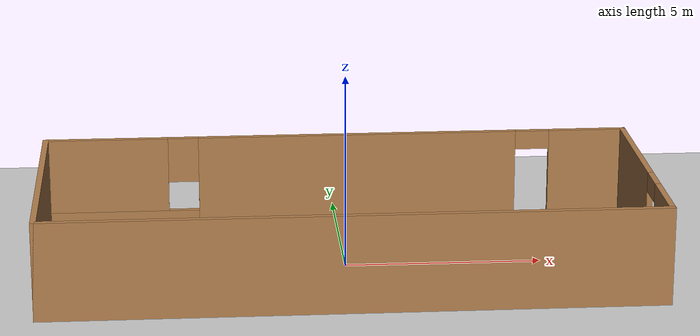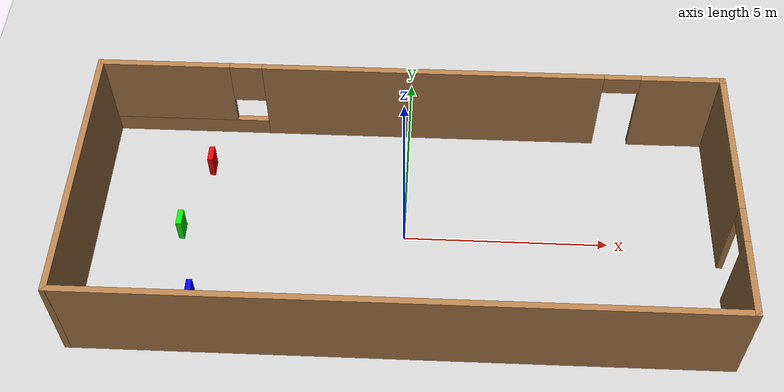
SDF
<sdf version="1.6">
 <world name="default">
  <light name="sun" type="directional">
   <pose>0 0 10 0 -0 0</pose>
   <diffuse>0.8 0.8 0.8 1</diffuse>
   <specular>0.2 0.2 0.2 1</specular>
   <attenuation>
    <range>1000</range>
    <constant>0.9</constant>
    <linear>0.01</linear>
    <quadratic>0.001</quadratic>
   </attenuation>
   <direction>-0.5 0.1 -0.9</direction>
  </light>
  <model name="ground_plane">
   <static>1</static>
   <link name="link">
    <collision name="collision">
     <geometry><plane><normal>0 0 1</normal><size>100 100</size></plane></geometry>
     <surface>
      <contact><collide_bitmask>65535</collide_bitmask></contact>
      <friction><ode><mu>100</mu><mu2>50</mu2></ode></friction>
     </surface>
    </collision>
    <visual name="visual">
     <cast_shadows>0</cast_shadows>
     <geometry><plane><normal>0 0 1</normal><size>100 100</size></plane></geometry>
     <material>
      <script><uri>file://media/materials/scripts/gazebo.material</uri><name>Gazebo/Grey</name></script>
     </material>
    </visual>
   </link>
  </model>
  <gravity>0 0 -9.8</gravity>
  <magnetic_field>6e-06 2.3e-05 -4.2e-05</magnetic_field>
  <atmosphere type="adiabatic"/>
  <physics name="default_physics" default="0" type="ode">
   <max_step_size>0.001</max_step_size>
   <real_time_factor>1</real_time_factor>
   <real_time_update_rate>1000</real_time_update_rate>
  </physics>
  <scene><ambient>0.4 0.4 0.4 1</ambient><background>0.7 0.7 0.7 1</background><shadows>1</shadows></scene>
  <audio><device>default</device></audio>
  <spherical_coordinates>
   <surface_model>EARTH_WGS84</surface_model>
   <latitude_deg>0</latitude_deg>
   <longitude_deg>0</longitude_deg>
   <elevation>0</elevation>
   <heading_deg>0</heading_deg>
  </spherical_coordinates>
  <model name="facility">
   <link name="Wall_5">
    <collision name="Wall_5_Collision">
     <geometry><box><size>15.5 0.15 2.5</size></box></geometry>
     <pose>0 0 1.25 0 -0 0</pose>
    </collision>
    <visual name="Wall_5_Visual">
     <pose>0 0 1.25 0 -0 0</pose>
     <geometry><box><size>15.5 0.15 2.5</size></box></geometry>
     <material>
      <script><uri>file://media/materials/scripts/gazebo.material</uri><name>Gazebo/Wood</name></script>
      <ambient>1 1 1 1</ambient>
     </material>
     <meta><layer>0</layer></meta>
    </visual>
    <pose>0 -3.3 0 0 -0 0</pose>
   </link>
   <link name="Wall_6">
    <pose>7.675 0 0 0 -0 1.5708</pose>
    <visual name="Wall_6_Visual_0">
     <pose>-2.41753 0 1.25 0 -0 0</pose>
     <geometry><box><size>1.91493 0.15 2.5</size></box></geometry>
     <material>
      <script><uri>file://media/materials/scripts/gazebo.material</uri><name>Gazebo/Wood</name></script>
      <ambient>1 1 1 1</ambient>
     </material>
     <meta><layer>0</layer></meta>
    </visual>
    <collision name="Wall_6_Collision_0">
     <geometry><box><size>1.91493 0.15 2.5</size></box></geometry>
     <pose>-2.41753 0 1.25 0 -0 0</pose>
    </collision>
    <visual name="Wall_6_Visual_1">
     <pose>1.40746 0 1.25 0 -0 0</pose>
     <geometry><box><size>3.93507 0.15 2.5</size></box></geometry>
     <material>
      <script><uri>file://media/materials/scripts/gazebo.material</uri><name>Gazebo/Wood</name></script>
      <ambient>1 1 1 1</ambient>
     </material>
     <meta><layer>0</layer></meta>
    </visual>
    <collision name="Wall_6_Collision_1">
     <geometry><box><size>3.93507 0.15 2.5</size></box></geometry>
     <pose>1.40746 0 1.25 0 -0 0</pose>
    </collision>
    <visual name="Wall_6_Visual_2">
     <pose>-1.01007 0 2.25 0 -0 0</pose>
     <geometry><box><size>0.9 0.15 0.5</size></box></geometry>
     <material>
      <script><uri>file://media/materials/scripts/gazebo.material</uri><name>Gazebo/Wood</name></script>
      <ambient>1 1 1 1</ambient>
     </material>
     <meta><layer>0</layer></meta>
    </visual>
    <collision name="Wall_6_Collision_2">
     <geometry><box><size>0.9 0.15 0.5</size></box></geometry>
     <pose>-1.01007 0 2.25 0 -0 0</pose>
    </collision>
   </link>
   <link name="Wall_7">
    <pose>0 3.3 0 0 -0 3.14159</pose>
    <visual name="Wall_7_Visual_0">
     <pose>-6.71594 0 1.25 0 -0 0</pose>
     <geometry><box><size>2.06812 0.15 2.5</size></box></geometry>
     <material>
      <script><uri>file://media/materials/scripts/gazebo.material</uri><name>Gazebo/Wood</name></script>
      <ambient>1 1 1 1</ambient>
     </material>
     <meta><layer>0</layer></meta>
    </visual>
    <collision name="Wall_7_Collision_0">
     <geometry><box><size>2.06812 0.15 2.5</size></box></geometry>
     <pose>-6.71594 0 1.25 0 -0 0</pose>
    </collision>
    <visual name="Wall_7_Visual_1">
     <pose>-0.557627 0 1.25 0 -0 0</pose>
     <geometry><box><size>8.4485 0.15 2.5</size></box></geometry>
     <material>
      <script><uri>file://media/materials/scripts/gazebo.material</uri><name>Gazebo/Wood</name></script>
      <ambient>1 1 1 1</ambient>
     </material>
     <meta><layer>0</layer></meta>
    </visual>
    <collision name="Wall_7_Collision_1">
     <geometry><box><size>8.4485 0.15 2.5</size></box></geometry>
     <pose>-0.557627 0 1.25 0 -0 0</pose>
    </collision>
    <visual name="Wall_7_Visual_2">
     <pose>5.70831 0 0.25 0 -0 0</pose>
     <geometry><box><size>4.08338 0.15 0.5</size></box></geometry>
     <material>
      <script><uri>file://media/materials/scripts/gazebo.material</uri><name>Gazebo/Wood</name></script>
      <ambient>1 1 1 1</ambient>
     </material>
     <meta><layer>0</layer></meta>
    </visual>
    <collision name="Wall_7_Collision_2">
     <geometry><box><size>4.08338 0.15 0.5</size></box></geometry>
     <pose>5.70831 0 0.25 0 -0 0</pose>
    </collision>
    <visual name="Wall_7_Visual_3">
     <pose>6.10831 0 1.5 0 -0 0</pose>
     <geometry><box><size>3.28337 0.15 2</size></box></geometry>
     <material>
      <script><uri>file://media/materials/scripts/gazebo.material</uri><name>Gazebo/Wood</name></script>
      <ambient>1 1 1 1</ambient>
     </material>
     <meta><layer>0</layer></meta>
    </visual>
    <collision name="Wall_7_Collision_3">
     <geometry><box><size>3.28337 0.15 2</size></box></geometry>
     <pose>6.10831 0 1.5 0 -0 0</pose>
    </collision>
    <visual name="Wall_7_Visual_4">
     <pose>4.06663 0 1.9 0 -0 0</pose>
     <geometry><box><size>0.8 0.15 1.2</size></box></geometry>
     <material>
      <script><uri>file://media/materials/scripts/gazebo.material</uri><name>Gazebo/Wood</name></script>
      <ambient>1 1 1 1</ambient>
     </material>
     <meta><layer>0</layer></meta>
    </visual>
    <collision name="Wall_7_Collision_4">
     <geometry><box><size>0.8 0.15 1.2</size></box></geometry>
     <pose>4.06663 0 1.9 0 -0 0</pose>
    </collision>
    <visual name="Wall_7_Visual_5">
     <pose>-5.23188 0 2.25 0 -0 0</pose>
     <geometry><box><size>0.9 0.15 0.5</size></box></geometry>
     <material>
      <script><uri>file://media/materials/scripts/gazebo.material</uri><name>Gazebo/Wood</name></script>
      <ambient>1 1 1 1</ambient>
     </material>
     <meta><layer>0</layer></meta>
    </visual>
    <collision name="Wall_7_Collision_5">
     <geometry><box><size>0.9 0.15 0.5</size></box></geometry>
     <pose>-5.23188 0 2.25 0 -0 0</pose>
    </collision>
   </link>
   <link name="Wall_8">
    <collision name="Wall_8_Collision">
     <geometry><box><size>6.75 0.15 2.5</size></box></geometry>
     <pose>0 0 1.25 0 -0 0</pose>
    </collision>
    <visual name="Wall_8_Visual">
     <pose>0 0 1.25 0 -0 0</pose>
     <geometry><box><size>6.75 0.15 2.5</size></box></geometry>
     <material>
      <script><uri>file://media/materials/scripts/gazebo.material</uri><name>Gazebo/Wood</name></script>
      <ambient>1 1 1 1</ambient>
     </material>
     <meta><layer>0</layer></meta>
    </visual>
    <pose>-7.675 0 0 0 -0 -1.5708</pose>
   </link>
   <static>1</static>
  </model>
  <model name="unit_box_blue">
   <link name="link">
    <inertial>
     <mass>1</mass>
     <inertia>
      <ixx>0.166667</ixx>
      <ixy>0</ixy>
      <ixz>0</ixz>
      <iyy>0.166667</iyy>
      <iyz>0</iyz>
      <izz>0.166667</izz>
     </inertia>
    </inertial>
    <visual name="visual">
     <geometry><box><size>0.139011 0.424914 0.63903</size></box></geometry>
     <material>
      <script><name>Gazebo/Grey</name><uri>file://media/materials/scripts/gazebo.material</uri></script>
      <shader type="vertex"><normal_map>__default__</normal_map></shader>
      <ambient>0 0 1 1</ambient>
      <diffuse>0 0 1 1</diffuse>
      <specular>0.01 0.01 0.01 1</specular>
      <emissive>0 0 0 1</emissive>
     </material>
    </visual>
    <collision name="collision">
     <geometry><box><size>0.139011 0.424914 0.63903</size></box></geometry>
     <surface>
      <friction>
       <ode><mu>1</mu><mu2>1</mu2><fdir1>0 0 0</fdir1><slip1>0</slip1><slip2>0</slip2></ode>
       <torsional>
        <coefficient>1</coefficient>
        <patch_radius>0</patch_radius>
        <surface_radius>0</surface_radius>
        <use_patch_radius>1</use_patch_radius>
        <ode><slip>0</slip></ode>
       </torsional>
      </friction>
      <bounce><restitution_coefficient>0</restitution_coefficient><threshold>1e+06</threshold></bounce>
      <contact>
       <collide_without_contact>0</collide_without_contact>
       <collide_without_contact_bitmask>1</collide_without_contact_bitmask>
       <collide_bitmask>1</collide_bitmask>
       <ode>
        <soft_cfm>0</soft_cfm>
        <soft_erp>0.2</soft_erp>
        <kp>1e+13</kp>
        <kd>1</kd>
        <max_vel>0.01</max_vel>
        <min_depth>0</min_depth>
       </ode>
       <bullet>
        <split_impulse>1</split_impulse>
        <split_impulse_penetration_threshold>-0.01</split_impulse_penetration_threshold>
        <soft_cfm>0</soft_cfm>
        <soft_erp>0.2</soft_erp>
        <kp>1e+13</kp>
        <kd>1</kd>
       </bullet>
      </contact>
     </surface>
    </collision>
   </link>
   <static>1</static>
   <pose>-5 -2 0.3 0 -0 0</pose>
  </model>
  <model name="unit_box_green">
   <link name="link">
    <inertial>
     <mass>1</mass>
     <inertia>
      <ixx>0.166667</ixx>
      <ixy>0</ixy>
      <ixz>0</ixz>
      <iyy>0.166667</iyy>
      <iyz>0</iyz>
      <izz>0.166667</izz>
     </inertia>
    </inertial>
    <visual name="visual">
     <geometry><box><size>0.139011 0.424914 0.63903</size></box></geometry>
     <material>
      <script><name>Gazebo/Grey</name><uri>file://media/materials/scripts/gazebo.material</uri></script>
      <shader type="vertex"><normal_map>__default__</normal_map></shader>
      <ambient>0 1 0 1</ambient>
      <diffuse>0 1 0 1</diffuse>
      <specular>0.01 0.01 0.01 1</specular>
      <emissive>0 0 0 1</emissive>
     </material>
    </visual>
    <collision name="collision">
     <geometry><box><size>0.139011 0.424914 0.63903</size></box></geometry>
     <surface>
      <friction>
       <ode><mu>1</mu><mu2>1</mu2><fdir1>0 0 0</fdir1><slip1>0</slip1><slip2>0</slip2></ode>
       <torsional>
        <coefficient>1</coefficient>
        <patch_radius>0</patch_radius>
        <surface_radius>0</surface_radius>
        <use_patch_radius>1</use_patch_radius>
        <ode><slip>0</slip></ode>
       </torsional>
      </friction>
      <bounce><restitution_coefficient>0</restitution_coefficient><threshold>1e+06</threshold></bounce>
      <contact>
       <collide_without_contact>0</collide_without_contact>
       <collide_without_contact_bitmask>1</collide_without_contact_bitmask>
       <collide_bitmask>1</collide_bitmask>
       <ode>
        <soft_cfm>0</soft_cfm>
        <soft_erp>0.2</soft_erp>
        <kp>1e+13</kp>
        <kd>1</kd>
        <max_vel>0.01</max_vel>
        <min_depth>0</min_depth>
       </ode>
       <bullet>
        <split_impulse>1</split_impulse>
        <split_impulse_penetration_threshold>-0.01</split_impulse_penetration_threshold>
        <soft_cfm>0</soft_cfm>
        <soft_erp>0.2</soft_erp>
        <kp>1e+13</kp>
        <kd>1</kd>
       </bullet>
      </contact>
     </surface>
    </collision>
   </link>
   <static>1</static>
   <pose>-5.5 0 0.3 0 -0 0</pose>
  </model>
  <model name="unit_box_red">
   <link name="link">
    <inertial>
     <mass>1</mass>
     <inertia>
      <ixx>0.166667</ixx>
      <ixy>0</ixy>
      <ixz>0</ixz>
      <iyy>0.166667</iyy>
      <iyz>0</iyz>
      <izz>0.166667</izz>
     </inertia>
    </inertial>
    <visual name="visual">
     <geometry><box><size>0.139011 0.424914 0.63903</size></box></geometry>
     <material>
      <script><name>Gazebo/Grey</name><uri>file://media/materials/scripts/gazebo.material</uri></script>
      <shader type="vertex"><normal_map>__default__</normal_map></shader>
      <ambient>1 0 0 1</ambient>
      <diffuse>1 0 0 1</diffuse>
      <specular>0.01 0.01 0.01 1</specular>
      <emissive>0 0 0 1</emissive>
     </material>
    </visual>
    <collision name="collision">
     <geometry><box><size>0.139011 0.424914 0.63903</size></box></geometry>
     <surface>
      <friction>
       <ode><mu>1</mu><mu2>1</mu2><fdir1>0 0 0</fdir1><slip1>0</slip1><slip2>0</slip2></ode>
       <torsional>
        <coefficient>1</coefficient>
        <patch_radius>0</patch_radius>
        <surface_radius>0</surface_radius>
        <use_patch_radius>1</use_patch_radius>
        <ode><slip>0</slip></ode>
       </torsional>
      </friction>
      <bounce><restitution_coefficient>0</restitution_coefficient><threshold>1e+06</threshold></bounce>
      <contact>
       <collide_without_contact>0</collide_without_contact>
       <collide_without_contact_bitmask>1</collide_without_contact_bitmask>
       <collide_bitmask>1</collide_bitmask>
       <ode>
        <soft_cfm>0</soft_cfm>
        <soft_erp>0.2</soft_erp>
        <kp>1e+13</kp>
        <kd>1</kd>
        <max_vel>0.01</max_vel>
        <min_depth>0</min_depth>
       </ode>
       <bullet>
        <split_impulse>1</split_impulse>
        <split_impulse_penetration_threshold>-0.01</split_impulse_penetration_threshold>
        <soft_cfm>0</soft_cfm>
        <soft_erp>0.2</soft_erp>
        <kp>1e+13</kp>
        <kd>1</kd>
       </bullet>
      </contact>
     </surface>
    </collision>
   </link>
   <static>1</static>
   <pose>-5 2 0.3 0 -0 0</pose>
  </model>
 </world>
</sdf>
